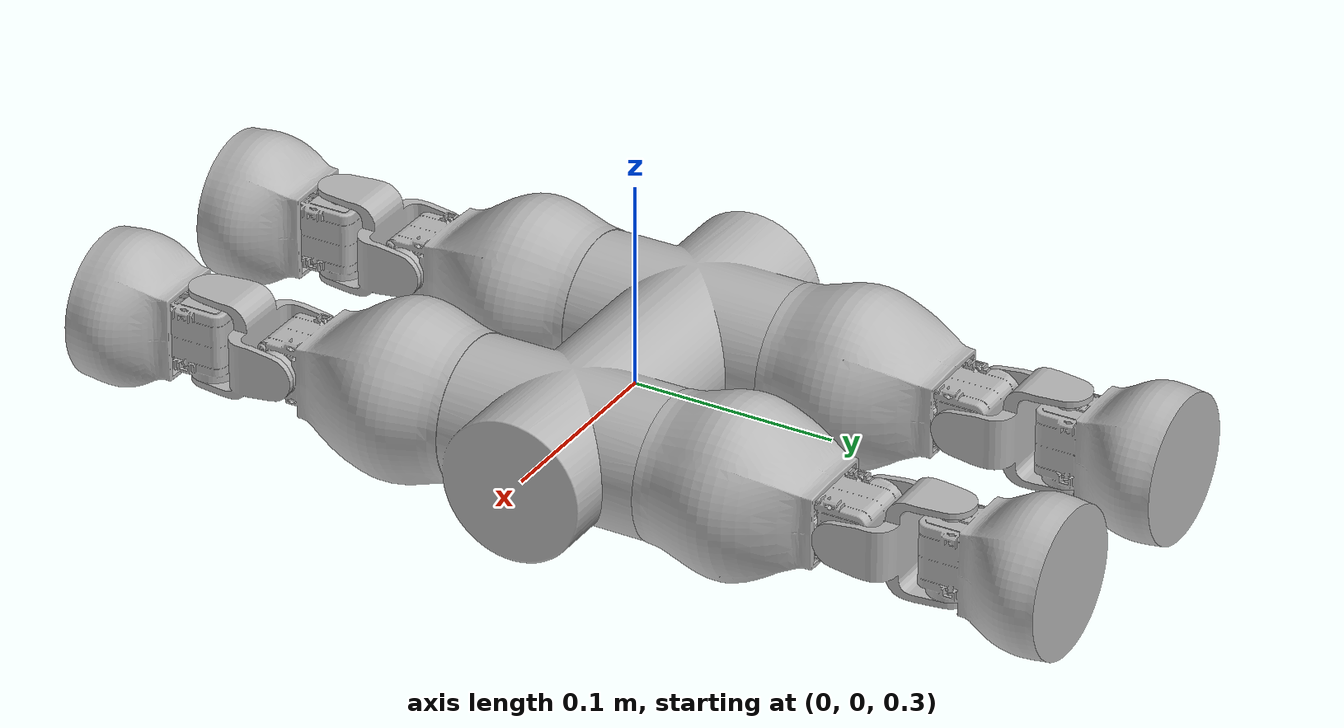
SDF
<?xml version="1.0" encoding="UTF-8"?>
<sdf version='1.6'>
  <model name='fable_robot'>
    <link name='b_body'>
      <pose frame=''>0 0 0.3 0 -0 0</pose>
      <inertial>
        <pose frame=''>0 0 0 0 -0 0</pose>
        <mass>0.87</mass>
        <inertia>
          <ixx>0.00271319</ixx>
          <ixy>0</ixy>
          <ixz>3.0916e-36</ixz>
          <iyy>0.00311552</iyy>
          <iyz>0</iyz>
          <izz>0.00414917</izz>
        </inertia>
      </inertial>
      <collision name='b_body_collision'>
        <pose frame=''>0.11 -0.05 0 0 -0 0</pose>
        <geometry>
          <mesh>
            <scale>1 1 1</scale>
            <uri>model://fable_model/meshes/passivebody.dae</uri>
          </mesh>
        </geometry>
        <surface>
          <contact>
            <ode/>
          </contact>
          <friction>
            <ode/>
          </friction>
        </surface>
      </collision>
      <collision name='b_body_fixed_joint_lump__b_leg1_collision_1'>
        <pose frame=''>0.055 -0.05 0 -1.57079 1.57079 -3.14159</pose>
        <geometry>
          <box>
            <size>0.001 0.001 0.001</size>
          </box>
        </geometry>
      </collision>
      <collision name='b_body_fixed_joint_lump__leg1_base_link_collision_2'>
        <pose frame=''>0.055 -0.05 0 -1.57079 1.57079 -3.14159</pose>
        <geometry>
          <mesh>
            <scale>1 1 1</scale>
            <uri>model://fable_model/meshes/base.dae</uri>
          </mesh>
        </geometry>
        <surface>
          <contact>
            <ode/>
          </contact>
          <friction>
            <ode/>
          </friction>
        </surface>
      </collision>
      <collision name='b_body_fixed_joint_lump__b_leg2_collision_3'>
        <pose frame=''>0.055 0.05 0 1.57079 1.57079 3.14159</pose>
        <geometry>
          <box>
            <size>0.001 0.001 0.001</size>
          </box>
        </geometry>
      </collision>
      <collision name='b_body_fixed_joint_lump__leg2_base_link_collision_4'>
        <pose frame=''>0.055 0.05 0 1.57079 1.57079 3.14159</pose>
        <geometry>
          <mesh>
            <scale>1 1 1</scale>
            <uri>model://fable_model/meshes/base.dae</uri>
          </mesh>
        </geometry>
        <surface>
          <contact>
            <ode/>
          </contact>
          <friction>
            <ode/>
          </friction>
        </surface>
      </collision>
      <collision name='b_body_fixed_joint_lump__b_leg3_collision_5'>
        <pose frame=''>-0.055 -0.05 0 -1.57079 1.57079 -3.14159</pose>
        <geometry>
          <box>
            <size>0.001 0.001 0.001</size>
          </box>
        </geometry>
      </collision>
      <collision name='b_body_fixed_joint_lump__leg3_base_link_collision_6'>
        <pose frame=''>-0.055 -0.05 0 -1.57079 1.57079 -3.14159</pose>
        <geometry>
          <mesh>
            <scale>1 1 1</scale>
            <uri>model://fable_model/meshes/base.dae</uri>
          </mesh>
        </geometry>
        <surface>
          <contact>
            <ode/>
          </contact>
          <friction>
            <ode/>
          </friction>
        </surface>
      </collision>
      <collision name='b_body_fixed_joint_lump__b_leg4_collision_7'>
        <pose frame=''>-0.055 0.05 0 1.57079 1.57079 3.14159</pose>
        <geometry>
          <box>
            <size>0.001 0.001 0.001</size>
          </box>
        </geometry>
      </collision>
      <collision name='b_body_fixed_joint_lump__leg4_base_link_collision_8'>
        <pose frame=''>-0.055 0.05 0 1.57079 1.57079 3.14159</pose>
        <geometry>
          <mesh>
            <scale>1 1 1</scale>
            <uri>model://fable_model/meshes/base.dae</uri>
          </mesh>
        </geometry>
        <surface>
          <contact>
            <ode/>
          </contact>
          <friction>
            <ode/>
          </friction>
        </surface>
      </collision>
      <visual name='b_body_visual'>
        <pose frame=''>0.11 -0.05 0 0 -0 0</pose>
        <geometry>
          <mesh>
            <scale>1 1 1</scale>
            <uri>model://fable_model/meshes/passivebody.dae</uri>
          </mesh>
        </geometry>
        <material>
          <script>
            <uri>__default__</uri>
            <name>__default__</name>
          </script>
        </material>
      </visual>
      <visual name='b_body_fixed_joint_lump__leg1_base_link_visual_1'>
        <pose frame=''>0.055 -0.05 0 -1.57079 1.57079 -3.14159</pose>
        <geometry>
          <mesh>
            <scale>1 1 1</scale>
            <uri>model://fable_model/meshes/base.dae</uri>
          </mesh>
        </geometry>
        <material>
          <script>
            <uri>__default__</uri>
            <name>__default__</name>
          </script>
        </material>
      </visual>
      <visual name='b_body_fixed_joint_lump__leg2_base_link_visual_2'>
        <pose frame=''>0.055 0.05 0 1.57079 1.57079 3.14159</pose>
        <geometry>
          <mesh>
            <scale>1 1 1</scale>
            <uri>model://fable_model/meshes/base.dae</uri>
          </mesh>
        </geometry>
        <material>
          <script>
            <uri>__default__</uri>
            <name>__default__</name>
          </script>
        </material>
      </visual>
      <visual name='b_body_fixed_joint_lump__leg3_base_link_visual_3'>
        <pose frame=''>-0.055 -0.05 0 -1.57079 1.57079 -3.14159</pose>
        <geometry>
          <mesh>
            <scale>1 1 1</scale>
            <uri>model://fable_model/meshes/base.dae</uri>
          </mesh>
        </geometry>
        <material>
          <script>
            <uri>__default__</uri>
            <name>__default__</name>
          </script>
        </material>
      </visual>
      <visual name='b_body_fixed_joint_lump__leg4_base_link_visual_4'>
        <pose frame=''>-0.055 0.05 0 1.57079 1.57079 3.14159</pose>
        <geometry>
          <mesh>
            <scale>1 1 1</scale>
            <uri>model://fable_model/meshes/base.dae</uri>
          </mesh>
        </geometry>
        <material>
          <script>
            <uri>__default__</uri>
            <name>__default__</name>
          </script>
        </material>
      </visual>
      <velocity_decay/>
      <velocity_decay/>
      <velocity_decay/>
      <velocity_decay/>
      <gravity>1</gravity>
      <velocity_decay/>
    </link>
    <link name='leg1_neck'>
      <pose frame=''>0.055 -0.1445 0.3 -1.5708 0 -1.5708</pose>
      <inertial>
        <pose frame=''>0 0 0 0 -0 0</pose>
        <mass>0.01</mass>
        <inertia>
          <ixx>6.88121e-06</ixx>
          <ixy>-7.58338e-10</ixy>
          <ixz>-7.71885e-11</ixz>
          <iyy>7.67769e-06</iyy>
          <iyz>7.59082e-10</iyz>
          <izz>6.8812e-06</izz>
        </inertia>
      </inertial>
      <collision name='leg1_neck_collision'>
        <pose frame=''>-0.0112 0 0 -1.57 -1.57 0</pose>
        <geometry>
          <mesh>
            <scale>1 1 1</scale>
            <uri>model://fable_model/meshes/middle.dae</uri>
          </mesh>
        </geometry>
        <surface>
          <contact>
            <ode/>
          </contact>
          <friction>
            <ode/>
          </friction>
        </surface>
      </collision>
      <visual name='leg1_neck_visual'>
        <pose frame=''>-0.0112 0 0 -1.57 -1.57 0</pose>
        <geometry>
          <mesh>
            <scale>1 1 1</scale>
            <uri>model://fable_model/meshes/middle.dae</uri>
          </mesh>
        </geometry>
        <material>
          <script>
            <uri>__default__</uri>
            <name>__default__</name>
          </script>
        </material>
      </visual>
      <gravity>1</gravity>
      <velocity_decay/>
    </link>
    <joint name='leg1_joint_1' type='revolute'>
      <child>leg1_neck</child>
      <parent>b_body</parent>
      <axis>
        <xyz>1 0 0</xyz>
        <limit>
          <lower>-1.5708</lower>
          <upper>1.5708</upper>
          <effort>1.56</effort>
          <velocity>1.56</velocity>
        </limit>
        <dynamics>
          <damping>0.15</damping>
          <friction>0.1</friction>
          <spring_reference>0</spring_reference>
          <spring_stiffness>0</spring_stiffness>
        </dynamics>
        <use_parent_model_frame>1</use_parent_model_frame>
      </axis>
    </joint>
    <link name='leg1_top'>
      <pose frame=''>0.055 -0.1902 0.3 -3.14159 0 -1.5708</pose>
      <inertial>
        <pose frame=''>0 0 0 0 -0 0</pose>
        <mass>0.1</mass>
        <inertia>
          <ixx>0.0001525</ixx>
          <ixy>0</ixy>
          <ixz>0</ixz>
          <iyy>0.0001525</iyy>
          <iyz>0</iyz>
          <izz>0.000245</izz>
        </inertia>
      </inertial>
      <collision name='leg1_top_collision'>
        <pose frame=''>0.0566 0 0 -1.57 0 1.57</pose>
        <geometry>
          <mesh>
            <scale>1 1 1</scale>
            <uri>model://fable_model/meshes/top.dae</uri>
          </mesh>
        </geometry>
        <surface>
          <contact>
            <ode/>
          </contact>
          <friction>
            <ode/>
          </friction>
        </surface>
      </collision>
      <collision name='leg1_top_fixed_joint_lump__leg1_ee_link_collision_1'>
        <pose frame=''>0.06 0 0 3.14159 1.57079 3.14159</pose>
        <geometry>
          <box>
            <size>0.01 0.01 0.01</size>
          </box>
        </geometry>
      </collision>
      <visual name='leg1_top_visual'>
        <pose frame=''>0.0566 0 0 -1.57 0 1.57</pose>
        <geometry>
          <mesh>
            <scale>1 1 1</scale>
            <uri>model://fable_model/meshes/top.dae</uri>
          </mesh>
        </geometry>
        <material>
          <script>
            <uri>__default__</uri>
            <name>__default__</name>
          </script>
        </material>
      </visual>
      <gravity>1</gravity>
      <velocity_decay/>
    </link>
    <joint name='leg1_joint_2' type='revolute'>
      <child>leg1_top</child>
      <parent>leg1_neck</parent>
      <axis>
        <xyz>0 0 -1</xyz>
        <limit>
          <lower>-1.5708</lower>
          <upper>1.5708</upper>
          <effort>1.56</effort>
          <velocity>1.56</velocity>
        </limit>
        <dynamics>
          <damping>0.15</damping>
          <friction>1</friction>
          <spring_reference>0</spring_reference>
          <spring_stiffness>0</spring_stiffness>
        </dynamics>
        <use_parent_model_frame>1</use_parent_model_frame>
      </axis>
    </joint>
    <link name='leg2_neck'>
      <pose frame=''>0.055 0.1445 0.3 -1.5708 0 1.5708</pose>
      <inertial>
        <pose frame=''>0 0 0 0 -0 0</pose>
        <mass>0.01</mass>
        <inertia>
          <ixx>6.88121e-06</ixx>
          <ixy>-7.58338e-10</ixy>
          <ixz>-7.71885e-11</ixz>
          <iyy>7.67769e-06</iyy>
          <iyz>7.59082e-10</iyz>
          <izz>6.8812e-06</izz>
        </inertia>
      </inertial>
      <collision name='leg2_neck_collision'>
        <pose frame=''>-0.0112 0 0 -1.57 -1.57 0</pose>
        <geometry>
          <mesh>
            <scale>1 1 1</scale>
            <uri>model://fable_model/meshes/middle.dae</uri>
          </mesh>
        </geometry>
        <surface>
          <contact>
            <ode/>
          </contact>
          <friction>
            <ode/>
          </friction>
        </surface>
      </collision>
      <visual name='leg2_neck_visual'>
        <pose frame=''>-0.0112 0 0 -1.57 -1.57 0</pose>
        <geometry>
          <mesh>
            <scale>1 1 1</scale>
            <uri>model://fable_model/meshes/middle.dae</uri>
          </mesh>
        </geometry>
        <material>
          <script>
            <uri>__default__</uri>
            <name>__default__</name>
          </script>
        </material>
      </visual>
      <gravity>1</gravity>
      <velocity_decay/>
    </link>
    <joint name='leg2_joint_1' type='revolute'>
      <child>leg2_neck</child>
      <parent>b_body</parent>
      <axis>
        <xyz>-1 0 -0</xyz>
        <limit>
          <lower>-1.5708</lower>
          <upper>1.5708</upper>
          <effort>1.56</effort>
          <velocity>1.56</velocity>
        </limit>
        <dynamics>
          <damping>0.15</damping>
          <friction>0.1</friction>
          <spring_reference>0</spring_reference>
          <spring_stiffness>0</spring_stiffness>
        </dynamics>
        <use_parent_model_frame>1</use_parent_model_frame>
      </axis>
    </joint>
    <link name='leg2_top'>
      <pose frame=''>0.055 0.1902 0.3 -3.14159 0 1.5708</pose>
      <inertial>
        <pose frame=''>0 0 0 0 -0 0</pose>
        <mass>0.1</mass>
        <inertia>
          <ixx>0.0001525</ixx>
          <ixy>0</ixy>
          <ixz>0</ixz>
          <iyy>0.0001525</iyy>
          <iyz>0</iyz>
          <izz>0.000245</izz>
        </inertia>
      </inertial>
      <collision name='leg2_top_collision'>
        <pose frame=''>0.0566 0 0 -1.57 0 1.57</pose>
        <geometry>
          <mesh>
            <scale>1 1 1</scale>
            <uri>model://fable_model/meshes/top.dae</uri>
          </mesh>
        </geometry>
        <surface>
          <contact>
            <ode/>
          </contact>
          <friction>
            <ode/>
          </friction>
        </surface>
      </collision>
      <collision name='leg2_top_fixed_joint_lump__leg2_ee_link_collision_1'>
        <pose frame=''>0.06 0 0 3.14159 1.57079 3.14159</pose>
        <geometry>
          <box>
            <size>0.01 0.01 0.01</size>
          </box>
        </geometry>
      </collision>
      <visual name='leg2_top_visual'>
        <pose frame=''>0.0566 0 0 -1.57 0 1.57</pose>
        <geometry>
          <mesh>
            <scale>1 1 1</scale>
            <uri>model://fable_model/meshes/top.dae</uri>
          </mesh>
        </geometry>
        <material>
          <script>
            <uri>__default__</uri>
            <name>__default__</name>
          </script>
        </material>
      </visual>
      <gravity>1</gravity>
      <velocity_decay/>
    </link>
    <joint name='leg2_joint_2' type='revolute'>
      <child>leg2_top</child>
      <parent>leg2_neck</parent>
      <axis>
        <xyz>-0 -0 -1</xyz>
        <limit>
          <lower>-1.5708</lower>
          <upper>1.5708</upper>
          <effort>1.56</effort>
          <velocity>1.56</velocity>
        </limit>
        <dynamics>
          <damping>0.15</damping>
          <friction>1</friction>
          <spring_reference>0</spring_reference>
          <spring_stiffness>0</spring_stiffness>
        </dynamics>
        <use_parent_model_frame>1</use_parent_model_frame>
      </axis>
    </joint>
    <link name='leg3_neck'>
      <pose frame=''>-0.055 -0.1445 0.3 -1.5708 0 -1.5708</pose>
      <inertial>
        <pose frame=''>0 0 0 0 -0 0</pose>
        <mass>0.01</mass>
        <inertia>
          <ixx>6.88121e-06</ixx>
          <ixy>-7.58338e-10</ixy>
          <ixz>-7.71885e-11</ixz>
          <iyy>7.67769e-06</iyy>
          <iyz>7.59082e-10</iyz>
          <izz>6.8812e-06</izz>
        </inertia>
      </inertial>
      <collision name='leg3_neck_collision'>
        <pose frame=''>-0.0112 0 0 -1.57 -1.57 0</pose>
        <geometry>
          <mesh>
            <scale>1 1 1</scale>
            <uri>model://fable_model/meshes/middle.dae</uri>
          </mesh>
        </geometry>
        <surface>
          <contact>
            <ode/>
          </contact>
          <friction>
            <ode/>
          </friction>
        </surface>
      </collision>
      <visual name='leg3_neck_visual'>
        <pose frame=''>-0.0112 0 0 -1.57 -1.57 0</pose>
        <geometry>
          <mesh>
            <scale>1 1 1</scale>
            <uri>model://fable_model/meshes/middle.dae</uri>
          </mesh>
        </geometry>
        <material>
          <script>
            <uri>__default__</uri>
            <name>__default__</name>
          </script>
        </material>
      </visual>
      <gravity>1</gravity>
      <velocity_decay/>
    </link>
    <joint name='leg3_joint_1' type='revolute'>
      <child>leg3_neck</child>
      <parent>b_body</parent>
      <axis>
        <xyz>1 0 0</xyz>
        <limit>
          <lower>-1.5708</lower>
          <upper>1.5708</upper>
          <effort>1.56</effort>
          <velocity>1.56</velocity>
        </limit>
        <dynamics>
          <damping>0.15</damping>
          <friction>0.1</friction>
          <spring_reference>0</spring_reference>
          <spring_stiffness>0</spring_stiffness>
        </dynamics>
        <use_parent_model_frame>1</use_parent_model_frame>
      </axis>
    </joint>
    <link name='leg3_top'>
      <pose frame=''>-0.055 -0.1902 0.3 -3.14159 0 -1.5708</pose>
      <inertial>
        <pose frame=''>0 0 0 0 -0 0</pose>
        <mass>0.1</mass>
        <inertia>
          <ixx>0.0001525</ixx>
          <ixy>0</ixy>
          <ixz>0</ixz>
          <iyy>0.0001525</iyy>
          <iyz>0</iyz>
          <izz>0.000245</izz>
        </inertia>
      </inertial>
      <collision name='leg3_top_collision'>
        <pose frame=''>0.0566 0 0 -1.57 0 1.57</pose>
        <geometry>
          <mesh>
            <scale>1 1 1</scale>
            <uri>model://fable_model/meshes/top.dae</uri>
          </mesh>
        </geometry>
        <surface>
          <contact>
            <ode/>
          </contact>
          <friction>
            <ode/>
          </friction>
        </surface>
      </collision>
      <collision name='leg3_top_fixed_joint_lump__leg3_ee_link_collision_1'>
        <pose frame=''>0.06 0 0 3.14159 1.57079 3.14159</pose>
        <geometry>
          <box>
            <size>0.01 0.01 0.01</size>
          </box>
        </geometry>
      </collision>
      <visual name='leg3_top_visual'>
        <pose frame=''>0.0566 0 0 -1.57 0 1.57</pose>
        <geometry>
          <mesh>
            <scale>1 1 1</scale>
            <uri>model://fable_model/meshes/top.dae</uri>
          </mesh>
        </geometry>
        <material>
          <script>
            <uri>__default__</uri>
            <name>__default__</name>
          </script>
        </material>
      </visual>
      <gravity>1</gravity>
      <velocity_decay/>
    </link>
    <joint name='leg3_joint_2' type='revolute'>
      <child>leg3_top</child>
      <parent>leg3_neck</parent>
      <axis>
        <xyz>0 0 -1</xyz>
        <limit>
          <lower>-1.5708</lower>
          <upper>1.5708</upper>
          <effort>1.56</effort>
          <velocity>1.56</velocity>
        </limit>
        <dynamics>
          <damping>0.15</damping>
          <friction>1</friction>
          <spring_reference>0</spring_reference>
          <spring_stiffness>0</spring_stiffness>
        </dynamics>
        <use_parent_model_frame>1</use_parent_model_frame>
      </axis>
    </joint>
    <link name='leg4_neck'>
      <pose frame=''>-0.055 0.1445 0.3 -1.5708 0 1.5708</pose>
      <inertial>
        <pose frame=''>0 0 0 0 -0 0</pose>
        <mass>0.01</mass>
        <inertia>
          <ixx>6.88121e-06</ixx>
          <ixy>-7.58338e-10</ixy>
          <ixz>-7.71885e-11</ixz>
          <iyy>7.67769e-06</iyy>
          <iyz>7.59082e-10</iyz>
          <izz>6.8812e-06</izz>
        </inertia>
      </inertial>
      <collision name='leg4_neck_collision'>
        <pose frame=''>-0.0112 0 0 -1.57 -1.57 0</pose>
        <geometry>
          <mesh>
            <scale>1 1 1</scale>
            <uri>model://fable_model/meshes/middle.dae</uri>
          </mesh>
        </geometry>
        <surface>
          <contact>
            <ode/>
          </contact>
          <friction>
            <ode/>
          </friction>
        </surface>
      </collision>
      <visual name='leg4_neck_visual'>
        <pose frame=''>-0.0112 0 0 -1.57 -1.57 0</pose>
        <geometry>
          <mesh>
            <scale>1 1 1</scale>
            <uri>model://fable_model/meshes/middle.dae</uri>
          </mesh>
        </geometry>
        <material>
          <script>
            <uri>__default__</uri>
            <name>__default__</name>
          </script>
        </material>
      </visual>
      <gravity>1</gravity>
      <velocity_decay/>
    </link>
    <joint name='leg4_joint_1' type='revolute'>
      <child>leg4_neck</child>
      <parent>b_body</parent>
      <axis>
        <xyz>-1 0 -0</xyz>
        <limit>
          <lower>-1.5708</lower>
          <upper>1.5708</upper>
          <effort>1.56</effort>
          <velocity>1.56</velocity>
        </limit>
        <dynamics>
          <damping>0.15</damping>
          <friction>0.1</friction>
          <spring_reference>0</spring_reference>
          <spring_stiffness>0</spring_stiffness>
        </dynamics>
        <use_parent_model_frame>1</use_parent_model_frame>
      </axis>
    </joint>
    <link name='leg4_top'>
      <pose frame=''>-0.055 0.1902 0.3 -3.14159 0 1.5708</pose>
      <inertial>
        <pose frame=''>0 0 0 0 -0 0</pose>
        <mass>0.1</mass>
        <inertia>
          <ixx>0.0001525</ixx>
          <ixy>0</ixy>
          <ixz>0</ixz>
          <iyy>0.0001525</iyy>
          <iyz>0</iyz>
          <izz>0.000245</izz>
        </inertia>
      </inertial>
      <collision name='leg4_top_collision'>
        <pose frame=''>0.0566 0 0 -1.57 0 1.57</pose>
        <geometry>
          <mesh>
            <scale>1 1 1</scale>
            <uri>model://fable_model/meshes/top.dae</uri>
          </mesh>
        </geometry>
        <surface>
          <contact>
            <ode/>
          </contact>
          <friction>
            <ode/>
          </friction>
        </surface>
      </collision>
      <collision name='leg4_top_fixed_joint_lump__leg4_ee_link_collision_1'>
        <pose frame=''>0.06 0 0 3.14159 1.57079 3.14159</pose>
        <geometry>
          <box>
            <size>0.01 0.01 0.01</size>
          </box>
        </geometry>
      </collision>
      <visual name='leg4_top_visual'>
        <pose frame=''>0.0566 0 0 -1.57 0 1.57</pose>
        <geometry>
          <mesh>
            <scale>1 1 1</scale>
            <uri>model://fable_model/meshes/top.dae</uri>
          </mesh>
        </geometry>
        <material>
          <script>
            <uri>__default__</uri>
            <name>__default__</name>
          </script>
        </material>
      </visual>
      <gravity>1</gravity>
      <velocity_decay/>
    </link>
    <joint name='leg4_joint_2' type='revolute'>
      <child>leg4_top</child>
      <parent>leg4_neck</parent>
      <axis>
        <xyz>-0 -0 -1</xyz>
        <limit>
          <lower>-1.5708</lower>
          <upper>1.5708</upper>
          <effort>1.56</effort>
          <velocity>1.56</velocity>
        </limit>
        <dynamics>
          <damping>0.15</damping>
          <friction>1</friction>
          <spring_reference>0</spring_reference>
          <spring_stiffness>0</spring_stiffness>
        </dynamics>
        <use_parent_model_frame>1</use_parent_model_frame>
      </axis>
    </joint>
    <plugin name='generic_controller' filename='libgeneric_controller_plugin.so'>
      <robotNamespace>/fable_robot</robotNamespace>
      <controller joint_name='leg1_joint_1'>
        <type>position</type>
        <pid>100.0 10.0 10.0</pid>
      </controller>
      <controller joint_name='leg2_joint_1'>
        <type>position</type>
        <pid>100.0 10.0 10.0</pid>
      </controller>
      <controller joint_name='leg3_joint_1'>
        <type>position</type>
        <pid>100.0 10.0 10.0</pid>
      </controller>
      <controller joint_name='leg4_joint_1'>
        <type>position</type>
        <pid>100.0 10.0 10.0</pid>
      </controller>

      <controller joint_name='leg1_joint_2'>
        <type>position</type>
        <pid>100.0 10.0 10.0</pid>
      </controller>
      <controller joint_name='leg2_joint_2'>
        <type>position</type>
        <pid>100.0 10.0 10.0</pid>
      </controller>
      <controller joint_name='leg3_joint_2'>
        <type>position</type>
        <pid>100.0 10.0 10.0</pid>
      </controller>
      <controller joint_name='leg4_joint_2'>
        <type>position</type>
        <pid>100.0 10.0 10.0</pid>
      </controller>
    </plugin>
  </model>
</sdf>
